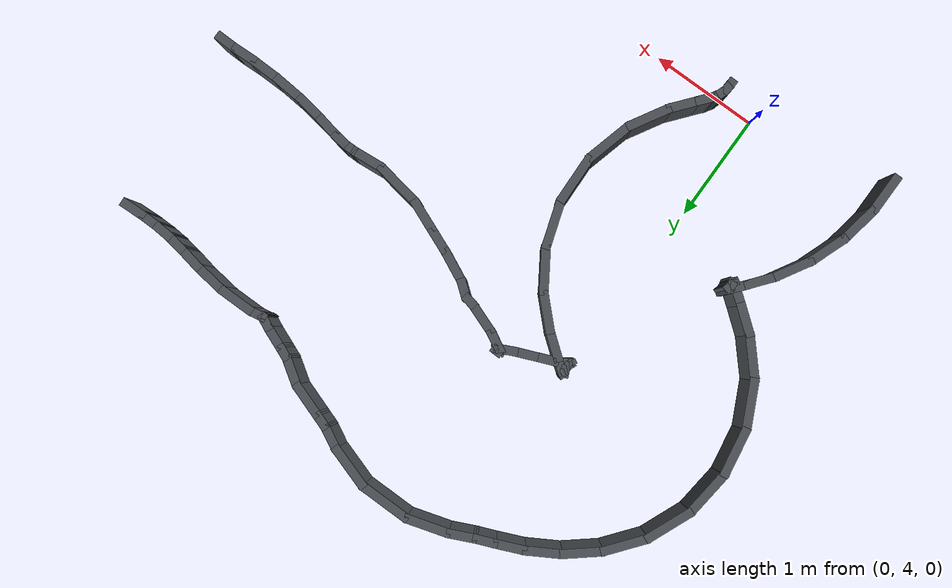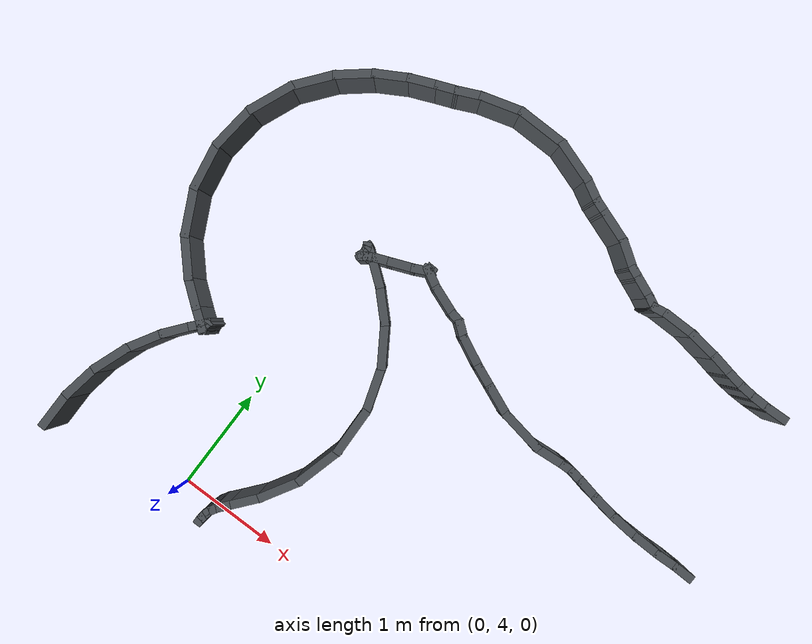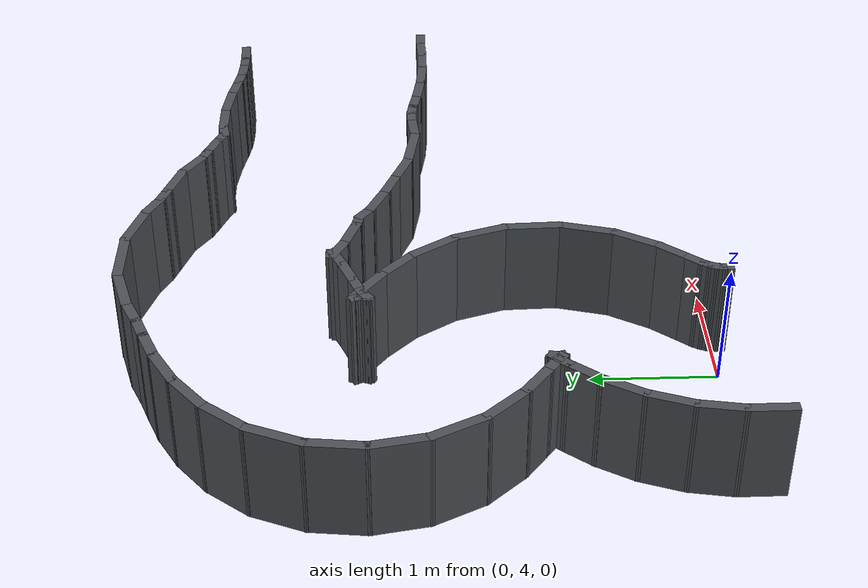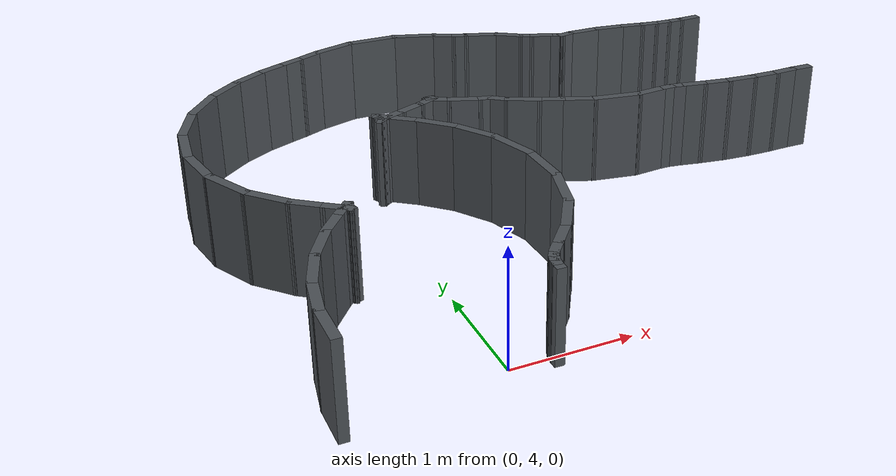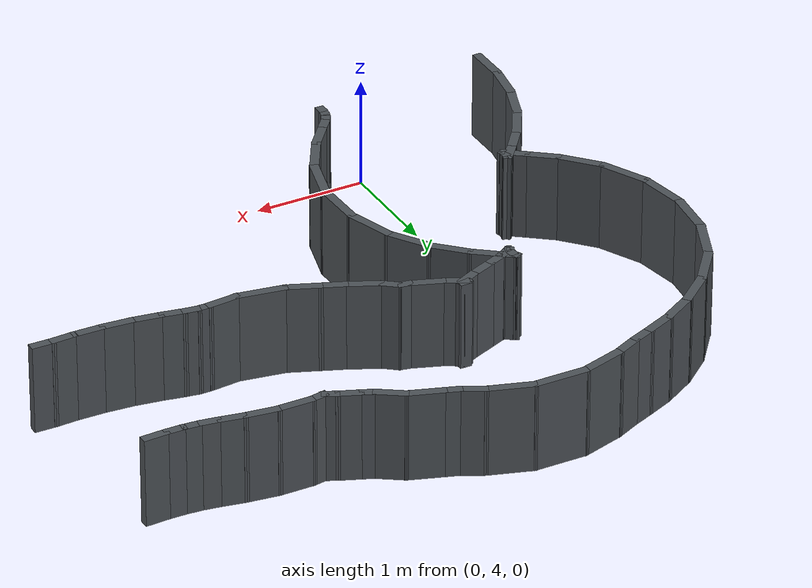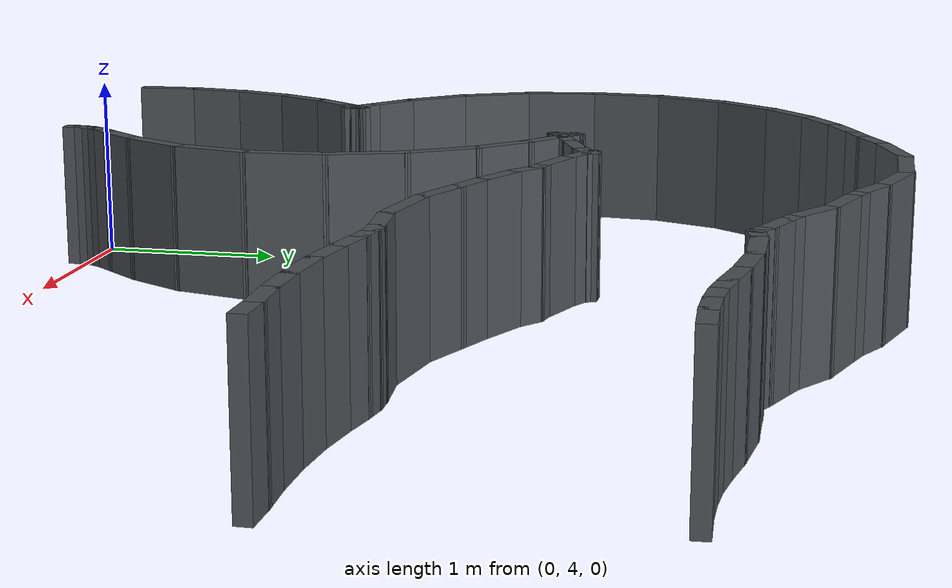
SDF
<sdf version="1.10">
 <world name="kookmin_xycar_track">
  <model name="slam_map">
   <static>true</static>
   <link name="route_wall_0023">
    <pose>4.066680 6.177895 0.400000 0 0 3.118690224</pose>
    <collision name="collision">
     <geometry><box><size>0.211960 0.080000 0.800000</size></box></geometry>
    </collision>
    <visual name="visual">
     <geometry><box><size>0.211960 0.080000 0.800000</size></box></geometry>
     <material>
      <ambient>0.3000 0.3200 0.3400 1.0000</ambient>
      <diffuse>0.3000 0.3200 0.3400 1.0000</diffuse>
     </material>
    </visual>
   </link>
   <link name="route_wall_0024">
    <pose>3.880706 6.176388 0.400000 0 0 -3.106851487</pose>
    <collision name="collision">
     <geometry><box><size>0.240152 0.080000 0.800000</size></box></geometry>
    </collision>
    <visual name="visual">
     <geometry><box><size>0.240152 0.080000 0.800000</size></box></geometry>
     <material>
      <ambient>0.3000 0.3200 0.3400 1.0000</ambient>
      <diffuse>0.3000 0.3200 0.3400 1.0000</diffuse>
     </material>
    </visual>
   </link>
   <link name="route_wall_0025">
    <pose>3.656183 6.175736 0.400000 0 0 3.118914098</pose>
    <collision name="collision">
     <geometry><box><size>0.289079 0.080000 0.800000</size></box></geometry>
    </collision>
    <visual name="visual">
     <geometry><box><size>0.289079 0.080000 0.800000</size></box></geometry>
     <material>
      <ambient>0.3000 0.3200 0.3400 1.0000</ambient>
      <diffuse>0.3000 0.3200 0.3400 1.0000</diffuse>
     </material>
    </visual>
   </link>
   <link name="route_wall_0026">
    <pose>3.403484 6.189761 0.400000 0 0 3.054436738</pose>
    <collision name="collision">
     <geometry><box><size>0.297360 0.080000 0.800000</size></box></geometry>
    </collision>
    <visual name="visual">
     <geometry><box><size>0.297360 0.080000 0.800000</size></box></geometry>
     <material>
      <ambient>0.3000 0.3200 0.3400 1.0000</ambient>
      <diffuse>0.3000 0.3200 0.3400 1.0000</diffuse>
     </material>
    </visual>
   </link>
   <link name="route_wall_0027">
    <pose>3.153701 6.220835 0.400000 0 0 2.979582078</pose>
    <collision name="collision">
     <geometry><box><size>0.286408 0.080000 0.800000</size></box></geometry>
    </collision>
    <visual name="visual">
     <geometry><box><size>0.286408 0.080000 0.800000</size></box></geometry>
     <material>
      <ambient>0.3000 0.3200 0.3400 1.0000</ambient>
      <diffuse>0.3000 0.3200 0.3400 1.0000</diffuse>
     </material>
    </visual>
   </link>
   <link name="route_wall_0028">
    <pose>2.938764 6.259848 0.400000 0 0 2.939355882</pose>
    <collision name="collision">
     <geometry><box><size>0.230577 0.080000 0.800000</size></box></geometry>
    </collision>
    <visual name="visual">
     <geometry><box><size>0.230577 0.080000 0.800000</size></box></geometry>
     <material>
      <ambient>0.3000 0.3200 0.3400 1.0000</ambient>
      <diffuse>0.3000 0.3200 0.3400 1.0000</diffuse>
     </material>
    </visual>
   </link>
   <link name="route_wall_0029">
    <pose>2.785933 6.288229 0.400000 0 0 2.987461907</pose>
    <collision name="collision">
     <geometry><box><size>0.160396 0.080000 0.800000</size></box></geometry>
    </collision>
    <visual name="visual">
     <geometry><box><size>0.160396 0.080000 0.800000</size></box></geometry>
     <material>
      <ambient>0.3000 0.3200 0.3400 1.0000</ambient>
      <diffuse>0.3000 0.3200 0.3400 1.0000</diffuse>
     </material>
    </visual>
   </link>
   <link name="route_wall_0030">
    <pose>2.677828 6.297540 0.400000 0 0 3.140164952</pose>
    <collision name="collision">
     <geometry><box><size>0.137243 0.080000 0.800000</size></box></geometry>
    </collision>
    <visual name="visual">
     <geometry><box><size>0.137243 0.080000 0.800000</size></box></geometry>
     <material>
      <ambient>0.3000 0.3200 0.3400 1.0000</ambient>
      <diffuse>0.3000 0.3200 0.3400 1.0000</diffuse>
     </material>
    </visual>
   </link>
   <link name="route_wall_0031">
    <pose>2.495059 6.286499 0.400000 0 0 -3.058956961</pose>
    <collision name="collision">
     <geometry><box><size>0.309212 0.080000 0.800000</size></box></geometry>
    </collision>
    <visual name="visual">
     <geometry><box><size>0.309212 0.080000 0.800000</size></box></geometry>
     <material>
      <ambient>0.3000 0.3200 0.3400 1.0000</ambient>
      <diffuse>0.3000 0.3200 0.3400 1.0000</diffuse>
     </material>
    </visual>
   </link>
   <link name="route_wall_0032">
    <pose>2.158049 6.310664 0.400000 0 0 2.969426668</pose>
    <collision name="collision">
     <geometry><box><size>0.451814 0.080000 0.800000</size></box></geometry>
    </collision>
    <visual name="visual">
     <geometry><box><size>0.451814 0.080000 0.800000</size></box></geometry>
     <material>
      <ambient>0.3000 0.3200 0.3400 1.0000</ambient>
      <diffuse>0.3000 0.3200 0.3400 1.0000</diffuse>
     </material>
    </visual>
   </link>
   <link name="route_wall_0033">
    <pose>1.822978 6.401107 0.400000 0 0 2.746278868</pose>
    <collision name="collision">
     <geometry><box><size>0.326515 0.080000 0.800000</size></box></geometry>
    </collision>
    <visual name="visual">
     <geometry><box><size>0.326515 0.080000 0.800000</size></box></geometry>
     <material>
      <ambient>0.3000 0.3200 0.3400 1.0000</ambient>
      <diffuse>0.3000 0.3200 0.3400 1.0000</diffuse>
     </material>
    </visual>
   </link>
   <link name="route_wall_0034">
    <pose>1.594399 6.496347 0.400000 0 0 2.747526660</pose>
    <collision name="collision">
     <geometry><box><size>0.248737 0.080000 0.800000</size></box></geometry>
    </collision>
    <visual name="visual">
     <geometry><box><size>0.248737 0.080000 0.800000</size></box></geometry>
     <material>
      <ambient>0.3000 0.3200 0.3400 1.0000</ambient>
      <diffuse>0.3000 0.3200 0.3400 1.0000</diffuse>
     </material>
    </visual>
   </link>
   <link name="route_wall_0035">
    <pose>1.366786 6.599541 0.400000 0 0 2.693298429</pose>
    <collision name="collision">
     <geometry><box><size>0.331268 0.080000 0.800000</size></box></geometry>
    </collision>
    <visual name="visual">
     <geometry><box><size>0.331268 0.080000 0.800000</size></box></geometry>
     <material>
      <ambient>0.3000 0.3200 0.3400 1.0000</ambient>
      <diffuse>0.3000 0.3200 0.3400 1.0000</diffuse>
     </material>
    </visual>
   </link>
   <link name="route_wall_0036">
    <pose>1.177283 6.708098 0.400000 0 0 2.479251623</pose>
    <collision name="collision">
     <geometry><box><size>0.187765 0.080000 0.800000</size></box></geometry>
    </collision>
    <visual name="visual">
     <geometry><box><size>0.187765 0.080000 0.800000</size></box></geometry>
     <material>
      <ambient>0.3000 0.3200 0.3400 1.0000</ambient>
      <diffuse>0.3000 0.3200 0.3400 1.0000</diffuse>
     </material>
    </visual>
   </link>
   <link name="route_wall_0037">
    <pose>1.073940 6.762874 0.400000 0 0 2.937290715</pose>
    <collision name="collision">
     <geometry><box><size>0.132080 0.080000 0.800000</size></box></geometry>
    </collision>
    <visual name="visual">
     <geometry><box><size>0.132080 0.080000 0.800000</size></box></geometry>
     <material>
      <ambient>0.3000 0.3200 0.3400 1.0000</ambient>
      <diffuse>0.3000 0.3200 0.3400 1.0000</diffuse>
     </material>
    </visual>
   </link>
   <link name="route_wall_0038">
    <pose>0.901160 6.820513 0.400000 0 0 2.779998943</pose>
    <collision name="collision">
     <geometry><box><size>0.313050 0.080000 0.800000</size></box></geometry>
    </collision>
    <visual name="visual">
     <geometry><box><size>0.313050 0.080000 0.800000</size></box></geometry>
     <material>
      <ambient>0.3000 0.3200 0.3400 1.0000</ambient>
      <diffuse>0.3000 0.3200 0.3400 1.0000</diffuse>
     </material>
    </visual>
   </link>
   <link name="route_wall_0039">
    <pose>0.687721 6.914750 0.400000 0 0 2.649731264</pose>
    <collision name="collision">
     <geometry><box><size>0.234548 0.080000 0.800000</size></box></geometry>
    </collision>
    <visual name="visual">
     <geometry><box><size>0.234548 0.080000 0.800000</size></box></geometry>
     <material>
      <ambient>0.3000 0.3200 0.3400 1.0000</ambient>
      <diffuse>0.3000 0.3200 0.3400 1.0000</diffuse>
     </material>
    </visual>
   </link>
   <link name="route_wall_0040">
    <pose>0.601748 6.965573 0.400000 0 0 1.617759873</pose>
    <collision name="collision">
     <geometry><box><size>0.049777 0.080000 0.800000</size></box></geometry>
    </collision>
    <visual name="visual">
     <geometry><box><size>0.049777 0.080000 0.800000</size></box></geometry>
     <material>
      <ambient>0.3000 0.3200 0.3400 1.0000</ambient>
      <diffuse>0.3000 0.3200 0.3400 1.0000</diffuse>
     </material>
    </visual>
   </link>
   <link name="route_wall_0041">
    <pose>0.634148 6.969611 0.400000 0 0 -0.025913968</pose>
    <collision name="collision">
     <geometry><box><size>0.105280 0.080000 0.800000</size></box></geometry>
    </collision>
    <visual name="visual">
     <geometry><box><size>0.105280 0.080000 0.800000</size></box></geometry>
     <material>
      <ambient>0.3000 0.3200 0.3400 1.0000</ambient>
      <diffuse>0.3000 0.3200 0.3400 1.0000</diffuse>
     </material>
    </visual>
   </link>
   <link name="route_wall_0042">
    <pose>0.659911 6.962137 0.400000 0 0 -2.373852807</pose>
    <collision name="collision">
     <geometry><box><size>0.059085 0.080000 0.800000</size></box></geometry>
    </collision>
    <visual name="visual">
     <geometry><box><size>0.059085 0.080000 0.800000</size></box></geometry>
     <material>
      <ambient>0.3000 0.3200 0.3400 1.0000</ambient>
      <diffuse>0.3000 0.3200 0.3400 1.0000</diffuse>
     </material>
    </visual>
   </link>
   <link name="route_wall_0043">
    <pose>0.576813 6.919122 0.400000 0 0 -2.696242966</pose>
    <collision name="collision">
     <geometry><box><size>0.208943 0.080000 0.800000</size></box></geometry>
    </collision>
    <visual name="visual">
     <geometry><box><size>0.208943 0.080000 0.800000</size></box></geometry>
     <material>
      <ambient>0.3000 0.3200 0.3400 1.0000</ambient>
      <diffuse>0.3000 0.3200 0.3400 1.0000</diffuse>
     </material>
    </visual>
   </link>
   <link name="route_wall_0044">
    <pose>0.399805 6.842053 0.400000 0 0 -2.757925123</pose>
    <collision name="collision">
     <geometry><box><size>0.257355 0.080000 0.800000</size></box></geometry>
    </collision>
    <visual name="visual">
     <geometry><box><size>0.257355 0.080000 0.800000</size></box></geometry>
     <material>
      <ambient>0.3000 0.3200 0.3400 1.0000</ambient>
      <diffuse>0.3000 0.3200 0.3400 1.0000</diffuse>
     </material>
    </visual>
   </link>
   <link name="route_wall_0045">
    <pose>0.232785 6.774767 0.400000 0 0 -2.759674588</pose>
    <collision name="collision">
     <geometry><box><size>0.182774 0.080000 0.800000</size></box></geometry>
    </collision>
    <visual name="visual">
     <geometry><box><size>0.182774 0.080000 0.800000</size></box></geometry>
     <material>
      <ambient>0.3000 0.3200 0.3400 1.0000</ambient>
      <diffuse>0.3000 0.3200 0.3400 1.0000</diffuse>
     </material>
    </visual>
   </link>
   <link name="route_wall_0046">
    <pose>0.131454 6.728596 0.400000 0 0 -2.632941077</pose>
    <collision name="collision">
     <geometry><box><size>0.120346 0.080000 0.800000</size></box></geometry>
    </collision>
    <visual name="visual">
     <geometry><box><size>0.120346 0.080000 0.800000</size></box></geometry>
     <material>
      <ambient>0.3000 0.3200 0.3400 1.0000</ambient>
      <diffuse>0.3000 0.3200 0.3400 1.0000</diffuse>
     </material>
    </visual>
   </link>
   <link name="route_wall_0047">
    <pose>0.076665 6.693876 0.400000 0 0 -2.485856049</pose>
    <collision name="collision">
     <geometry><box><size>0.089714 0.080000 0.800000</size></box></geometry>
    </collision>
    <visual name="visual">
     <geometry><box><size>0.089714 0.080000 0.800000</size></box></geometry>
     <material>
      <ambient>0.3000 0.3200 0.3400 1.0000</ambient>
      <diffuse>0.3000 0.3200 0.3400 1.0000</diffuse>
     </material>
    </visual>
   </link>
   <link name="route_wall_0048">
    <pose>0.055192 6.679678 0.400000 0 0 2.645624647</pose>
    <collision name="collision">
     <geometry><box><size>0.044028 0.080000 0.800000</size></box></geometry>
    </collision>
    <visual name="visual">
     <geometry><box><size>0.044028 0.080000 0.800000</size></box></geometry>
     <material>
      <ambient>0.3000 0.3200 0.3400 1.0000</ambient>
      <diffuse>0.3000 0.3200 0.3400 1.0000</diffuse>
     </material>
    </visual>
   </link>
   <link name="route_wall_0049">
    <pose>0.059844 6.696252 0.400000 0 0 1.180505814</pose>
    <collision name="collision">
     <geometry><box><size>0.073771 0.080000 0.800000</size></box></geometry>
    </collision>
    <visual name="visual">
     <geometry><box><size>0.073771 0.080000 0.800000</size></box></geometry>
     <material>
      <ambient>0.3000 0.3200 0.3400 1.0000</ambient>
      <diffuse>0.3000 0.3200 0.3400 1.0000</diffuse>
     </material>
    </visual>
   </link>
   <link name="route_wall_0050">
    <pose>0.068265 6.727100 0.400000 0 0 1.440461473</pose>
    <collision name="collision">
     <geometry><box><size>0.070726 0.080000 0.800000</size></box></geometry>
    </collision>
    <visual name="visual">
     <geometry><box><size>0.070726 0.080000 0.800000</size></box></geometry>
     <material>
      <ambient>0.3000 0.3200 0.3400 1.0000</ambient>
      <diffuse>0.3000 0.3200 0.3400 1.0000</diffuse>
     </material>
    </visual>
   </link>
   <link name="route_wall_0051">
    <pose>0.067244 6.757899 0.400000 0 0 1.762306409</pose>
    <collision name="collision">
     <geometry><box><size>0.071711 0.080000 0.800000</size></box></geometry>
    </collision>
    <visual name="visual">
     <geometry><box><size>0.071711 0.080000 0.800000</size></box></geometry>
     <material>
      <ambient>0.3000 0.3200 0.3400 1.0000</ambient>
      <diffuse>0.3000 0.3200 0.3400 1.0000</diffuse>
     </material>
    </visual>
   </link>
   <link name="route_wall_0052">
    <pose>0.056206 6.789823 0.400000 0 0 2.026629559</pose>
    <collision name="collision">
     <geometry><box><size>0.076438 0.080000 0.800000</size></box></geometry>
    </collision>
    <visual name="visual">
     <geometry><box><size>0.076438 0.080000 0.800000</size></box></geometry>
     <material>
      <ambient>0.3000 0.3200 0.3400 1.0000</ambient>
      <diffuse>0.3000 0.3200 0.3400 1.0000</diffuse>
     </material>
    </visual>
   </link>
   <link name="route_wall_0053">
    <pose>0.054252 6.803685 0.400000 0 0 -0.390416202</pose>
    <collision name="collision">
     <geometry><box><size>0.053120 0.080000 0.800000</size></box></geometry>
    </collision>
    <visual name="visual">
     <geometry><box><size>0.053120 0.080000 0.800000</size></box></geometry>
     <material>
      <ambient>0.3000 0.3200 0.3400 1.0000</ambient>
      <diffuse>0.3000 0.3200 0.3400 1.0000</diffuse>
     </material>
    </visual>
   </link>
   <link name="route_wall_0054">
    <pose>0.112756 6.762896 0.400000 0 0 -0.630745345</pose>
    <collision name="collision">
     <geometry><box><size>0.169862 0.080000 0.800000</size></box></geometry>
    </collision>
    <visual name="visual">
     <geometry><box><size>0.169862 0.080000 0.800000</size></box></geometry>
     <material>
      <ambient>0.3000 0.3200 0.3400 1.0000</ambient>
      <diffuse>0.3000 0.3200 0.3400 1.0000</diffuse>
     </material>
    </visual>
   </link>
   <link name="route_wall_0055">
    <pose>0.263308 6.648690 0.400000 0 0 -0.658507556</pose>
    <collision name="collision">
     <geometry><box><size>0.288107 0.080000 0.800000</size></box></geometry>
    </collision>
    <visual name="visual">
     <geometry><box><size>0.288107 0.080000 0.800000</size></box></geometry>
     <material>
      <ambient>0.3000 0.3200 0.3400 1.0000</ambient>
      <diffuse>0.3000 0.3200 0.3400 1.0000</diffuse>
     </material>
    </visual>
   </link>
   <link name="route_wall_0056">
    <pose>0.481211 6.453624 0.400000 0 0 -0.782736762</pose>
    <collision name="collision">
     <geometry><box><size>0.377915 0.080000 0.800000</size></box></geometry>
    </collision>
    <visual name="visual">
     <geometry><box><size>0.377915 0.080000 0.800000</size></box></geometry>
     <material>
      <ambient>0.3000 0.3200 0.3400 1.0000</ambient>
      <diffuse>0.3000 0.3200 0.3400 1.0000</diffuse>
     </material>
    </visual>
   </link>
   <link name="route_wall_0057">
    <pose>0.708033 6.168649 0.400000 0 0 -0.997615465</pose>
    <collision name="collision">
     <geometry><box><size>0.434732 0.080000 0.800000</size></box></geometry>
    </collision>
    <visual name="visual">
     <geometry><box><size>0.434732 0.080000 0.800000</size></box></geometry>
     <material>
      <ambient>0.3000 0.3200 0.3400 1.0000</ambient>
      <diffuse>0.3000 0.3200 0.3400 1.0000</diffuse>
     </material>
    </visual>
   </link>
   <link name="route_wall_0058">
    <pose>0.880274 5.802291 0.400000 0 0 -1.256408148</pose>
    <collision name="collision">
     <geometry><box><size>0.461740 0.080000 0.800000</size></box></geometry>
    </collision>
    <visual name="visual">
     <geometry><box><size>0.461740 0.080000 0.800000</size></box></geometry>
     <material>
      <ambient>0.3000 0.3200 0.3400 1.0000</ambient>
      <diffuse>0.3000 0.3200 0.3400 1.0000</diffuse>
     </material>
    </visual>
   </link>
   <link name="route_wall_0059">
    <pose>0.951910 5.383896 0.400000 0 0 -1.541303337</pose>
    <collision name="collision">
     <geometry><box><size>0.475912 0.080000 0.800000</size></box></geometry>
    </collision>
    <visual name="visual">
     <geometry><box><size>0.475912 0.080000 0.800000</size></box></geometry>
     <material>
      <ambient>0.3000 0.3200 0.3400 1.0000</ambient>
      <diffuse>0.3000 0.3200 0.3400 1.0000</diffuse>
     </material>
    </visual>
   </link>
   <link name="route_wall_0060">
    <pose>0.902152 4.957134 0.400000 0 0 -1.833533494</pose>
    <collision name="collision">
     <geometry><box><size>0.472651 0.080000 0.800000</size></box></geometry>
    </collision>
    <visual name="visual">
     <geometry><box><size>0.472651 0.080000 0.800000</size></box></geometry>
     <material>
      <ambient>0.3000 0.3200 0.3400 1.0000</ambient>
      <diffuse>0.3000 0.3200 0.3400 1.0000</diffuse>
     </material>
    </visual>
   </link>
   <link name="route_wall_0061">
    <pose>0.751174 4.586245 0.400000 0 0 -2.100253503</pose>
    <collision name="collision">
     <geometry><box><size>0.415368 0.080000 0.800000</size></box></geometry>
    </collision>
    <visual name="visual">
     <geometry><box><size>0.415368 0.080000 0.800000</size></box></geometry>
     <material>
      <ambient>0.3000 0.3200 0.3400 1.0000</ambient>
      <diffuse>0.3000 0.3200 0.3400 1.0000</diffuse>
     </material>
    </visual>
   </link>
   <link name="route_wall_0062">
    <pose>0.575559 4.326039 0.400000 0 0 -2.259334244</pose>
    <collision name="collision">
     <geometry><box><size>0.294397 0.080000 0.800000</size></box></geometry>
    </collision>
    <visual name="visual">
     <geometry><box><size>0.294397 0.080000 0.800000</size></box></geometry>
     <material>
      <ambient>0.3000 0.3200 0.3400 1.0000</ambient>
      <diffuse>0.3000 0.3200 0.3400 1.0000</diffuse>
     </material>
    </visual>
   </link>
   <link name="route_wall_0063">
    <pose>0.452438 4.177087 0.400000 0 0 -2.265780603</pose>
    <collision name="collision">
     <geometry><box><size>0.172104 0.080000 0.800000</size></box></geometry>
    </collision>
    <visual name="visual">
     <geometry><box><size>0.172104 0.080000 0.800000</size></box></geometry>
     <material>
      <ambient>0.3000 0.3200 0.3400 1.0000</ambient>
      <diffuse>0.3000 0.3200 0.3400 1.0000</diffuse>
     </material>
    </visual>
   </link>
   <link name="route_wall_0064">
    <pose>0.392894 4.098183 0.400000 0 0 -2.120125550</pose>
    <collision name="collision">
     <geometry><box><size>0.106064 0.080000 0.800000</size></box></geometry>
    </collision>
    <visual name="visual">
     <geometry><box><size>0.106064 0.080000 0.800000</size></box></geometry>
     <material>
      <ambient>0.3000 0.3200 0.3400 1.0000</ambient>
      <diffuse>0.3000 0.3200 0.3400 1.0000</diffuse>
     </material>
    </visual>
   </link>
   <link name="route_wall_0065">
    <pose>0.366701 4.045649 0.400000 0 0 -1.922732345</pose>
    <collision name="collision">
     <geometry><box><size>0.091906 0.080000 0.800000</size></box></geometry>
    </collision>
    <visual name="visual">
     <geometry><box><size>0.091906 0.080000 0.800000</size></box></geometry>
     <material>
      <ambient>0.3000 0.3200 0.3400 1.0000</ambient>
      <diffuse>0.3000 0.3200 0.3400 1.0000</diffuse>
     </material>
    </visual>
   </link>
   <link name="route_wall_0066">
    <pose>0.353142 3.993082 0.400000 0 0 -1.732886128</pose>
    <collision name="collision">
     <geometry><box><size>0.097160 0.080000 0.800000</size></box></geometry>
    </collision>
    <visual name="visual">
     <geometry><box><size>0.097160 0.080000 0.800000</size></box></geometry>
     <material>
      <ambient>0.3000 0.3200 0.3400 1.0000</ambient>
      <diffuse>0.3000 0.3200 0.3400 1.0000</diffuse>
     </material>
    </visual>
   </link>
   <link name="route_wall_0067">
    <pose>0.348047 3.938284 0.400000 0 0 -1.588963887</pose>
    <collision name="collision">
     <geometry><box><size>0.093194 0.080000 0.800000</size></box></geometry>
    </collision>
    <visual name="visual">
     <geometry><box><size>0.093194 0.080000 0.800000</size></box></geometry>
     <material>
      <ambient>0.3000 0.3200 0.3400 1.0000</ambient>
      <diffuse>0.3000 0.3200 0.3400 1.0000</diffuse>
     </material>
    </visual>
   </link>
   <link name="route_wall_0238">
    <pose>3.870030 7.808353 0.400000 0 0 -3.106711689</pose>
    <collision name="collision">
     <geometry><box><size>0.239165 0.080000 0.800000</size></box></geometry>
    </collision>
    <visual name="visual">
     <geometry><box><size>0.239165 0.080000 0.800000</size></box></geometry>
     <material>
      <ambient>0.3000 0.3200 0.3400 1.0000</ambient>
      <diffuse>0.3000 0.3200 0.3400 1.0000</diffuse>
     </material>
    </visual>
   </link>
   <link name="route_wall_0239">
    <pose>3.695432 7.806514 0.400000 0 0 3.119825711</pose>
    <collision name="collision">
     <geometry><box><size>0.190188 0.080000 0.800000</size></box></geometry>
    </collision>
    <visual name="visual">
     <geometry><box><size>0.190188 0.080000 0.800000</size></box></geometry>
     <material>
      <ambient>0.3000 0.3200 0.3400 1.0000</ambient>
      <diffuse>0.3000 0.3200 0.3400 1.0000</diffuse>
     </material>
    </visual>
   </link>
   <link name="route_wall_0240">
    <pose>3.549693 7.814172 0.400000 0 0 3.056562306</pose>
    <collision name="collision">
     <geometry><box><size>0.181839 0.080000 0.800000</size></box></geometry>
    </collision>
    <visual name="visual">
     <geometry><box><size>0.181839 0.080000 0.800000</size></box></geometry>
     <material>
      <ambient>0.3000 0.3200 0.3400 1.0000</ambient>
      <diffuse>0.3000 0.3200 0.3400 1.0000</diffuse>
     </material>
    </visual>
   </link>
   <link name="route_wall_0241">
    <pose>3.403671 7.832899 0.400000 0 0 2.974578315</pose>
    <collision name="collision">
     <geometry><box><size>0.192844 0.080000 0.800000</size></box></geometry>
    </collision>
    <visual name="visual">
     <geometry><box><size>0.192844 0.080000 0.800000</size></box></geometry>
     <material>
      <ambient>0.3000 0.3200 0.3400 1.0000</ambient>
      <diffuse>0.3000 0.3200 0.3400 1.0000</diffuse>
     </material>
    </visual>
   </link>
   <link name="route_wall_0242">
    <pose>3.226035 7.866340 0.400000 0 0 2.941554034</pose>
    <collision name="collision">
     <geometry><box><size>0.248716 0.080000 0.800000</size></box></geometry>
    </collision>
    <visual name="visual">
     <geometry><box><size>0.248716 0.080000 0.800000</size></box></geometry>
     <material>
      <ambient>0.3000 0.3200 0.3400 1.0000</ambient>
      <diffuse>0.3000 0.3200 0.3400 1.0000</diffuse>
     </material>
    </visual>
   </link>
   <link name="route_wall_0243">
    <pose>2.985600 7.906028 0.400000 0 0 3.005270886</pose>
    <collision name="collision">
     <geometry><box><size>0.318903 0.080000 0.800000</size></box></geometry>
    </collision>
    <visual name="visual">
     <geometry><box><size>0.318903 0.080000 0.800000</size></box></geometry>
     <material>
      <ambient>0.3000 0.3200 0.3400 1.0000</ambient>
      <diffuse>0.3000 0.3200 0.3400 1.0000</diffuse>
     </material>
    </visual>
   </link>
   <link name="route_wall_0244">
    <pose>2.696694 7.926232 0.400000 0 0 3.133284768</pose>
    <collision name="collision">
     <geometry><box><size>0.341508 0.080000 0.800000</size></box></geometry>
    </collision>
    <visual name="visual">
     <geometry><box><size>0.341508 0.080000 0.800000</size></box></geometry>
     <material>
      <ambient>0.3000 0.3200 0.3400 1.0000</ambient>
      <diffuse>0.3000 0.3200 0.3400 1.0000</diffuse>
     </material>
    </visual>
   </link>
   <link name="route_wall_0245">
    <pose>2.481614 7.916950 0.400000 0 0 -2.979271766</pose>
    <collision name="collision">
     <geometry><box><size>0.170375 0.080000 0.800000</size></box></geometry>
    </collision>
    <visual name="visual">
     <geometry><box><size>0.170375 0.080000 0.800000</size></box></geometry>
     <material>
      <ambient>0.3000 0.3200 0.3400 1.0000</ambient>
      <diffuse>0.3000 0.3200 0.3400 1.0000</diffuse>
     </material>
    </visual>
   </link>
   <link name="route_wall_0246">
    <pose>2.425274 7.906380 0.400000 0 0 -0.004355527</pose>
    <collision name="collision">
     <geometry><box><size>0.055980 0.080000 0.800000</size></box></geometry>
    </collision>
    <visual name="visual">
     <geometry><box><size>0.055980 0.080000 0.800000</size></box></geometry>
     <material>
      <ambient>0.3000 0.3200 0.3400 1.0000</ambient>
      <diffuse>0.3000 0.3200 0.3400 1.0000</diffuse>
     </material>
    </visual>
   </link>
   <link name="route_wall_0247">
    <pose>2.382834 7.931598 0.400000 0 0 2.677336784</pose>
    <collision name="collision">
     <geometry><box><size>0.152799 0.080000 0.800000</size></box></geometry>
    </collision>
    <visual name="visual">
     <geometry><box><size>0.152799 0.080000 0.800000</size></box></geometry>
     <material>
      <ambient>0.3000 0.3200 0.3400 1.0000</ambient>
      <diffuse>0.3000 0.3200 0.3400 1.0000</diffuse>
     </material>
    </visual>
   </link>
   <link name="route_wall_0248">
    <pose>2.244492 7.993251 0.400000 0 0 2.749042956</pose>
    <collision name="collision">
     <geometry><box><size>0.230299 0.080000 0.800000</size></box></geometry>
    </collision>
    <visual name="visual">
     <geometry><box><size>0.230299 0.080000 0.800000</size></box></geometry>
     <material>
      <ambient>0.3000 0.3200 0.3400 1.0000</ambient>
      <diffuse>0.3000 0.3200 0.3400 1.0000</diffuse>
     </material>
    </visual>
   </link>
   <link name="route_wall_0249">
    <pose>2.107365 8.050915 0.400000 0 0 2.733720942</pose>
    <collision name="collision">
     <geometry><box><size>0.147224 0.080000 0.800000</size></box></geometry>
    </collision>
    <visual name="visual">
     <geometry><box><size>0.147224 0.080000 0.800000</size></box></geometry>
     <material>
      <ambient>0.3000 0.3200 0.3400 1.0000</ambient>
      <diffuse>0.3000 0.3200 0.3400 1.0000</diffuse>
     </material>
    </visual>
   </link>
   <link name="route_wall_0250">
    <pose>1.953929 8.142502 0.400000 0 0 2.548035988</pose>
    <collision name="collision">
     <geometry><box><size>0.291455 0.080000 0.800000</size></box></geometry>
    </collision>
    <visual name="visual">
     <geometry><box><size>0.291455 0.080000 0.800000</size></box></geometry>
     <material>
      <ambient>0.3000 0.3200 0.3400 1.0000</ambient>
      <diffuse>0.3000 0.3200 0.3400 1.0000</diffuse>
     </material>
    </visual>
   </link>
   <link name="route_wall_0251">
    <pose>1.705446 8.263889 0.400000 0 0 2.801367282</pose>
    <collision name="collision">
     <geometry><box><size>0.346064 0.080000 0.800000</size></box></geometry>
    </collision>
    <visual name="visual">
     <geometry><box><size>0.346064 0.080000 0.800000</size></box></geometry>
     <material>
      <ambient>0.3000 0.3200 0.3400 1.0000</ambient>
      <diffuse>0.3000 0.3200 0.3400 1.0000</diffuse>
     </material>
    </visual>
   </link>
   <link name="route_wall_0252">
    <pose>1.502235 8.335987 0.400000 0 0 2.798904666</pose>
    <collision name="collision">
     <geometry><box><size>0.165179 0.080000 0.800000</size></box></geometry>
    </collision>
    <visual name="visual">
     <geometry><box><size>0.165179 0.080000 0.800000</size></box></geometry>
     <material>
      <ambient>0.3000 0.3200 0.3400 1.0000</ambient>
      <diffuse>0.3000 0.3200 0.3400 1.0000</diffuse>
     </material>
    </visual>
   </link>
   <link name="route_wall_0253">
    <pose>1.352864 8.405046 0.400000 0 0 2.653334137</pose>
    <collision name="collision">
     <geometry><box><size>0.244768 0.080000 0.800000</size></box></geometry>
    </collision>
    <visual name="visual">
     <geometry><box><size>0.244768 0.080000 0.800000</size></box></geometry>
     <material>
      <ambient>0.3000 0.3200 0.3400 1.0000</ambient>
      <diffuse>0.3000 0.3200 0.3400 1.0000</diffuse>
     </material>
    </visual>
   </link>
   <link name="route_wall_0254">
    <pose>1.075410 8.515061 0.400000 0 0 2.821561829</pose>
    <collision name="collision">
     <geometry><box><size>0.434076 0.080000 0.800000</size></box></geometry>
    </collision>
    <visual name="visual">
     <geometry><box><size>0.434076 0.080000 0.800000</size></box></geometry>
     <material>
      <ambient>0.3000 0.3200 0.3400 1.0000</ambient>
      <diffuse>0.3000 0.3200 0.3400 1.0000</diffuse>
     </material>
    </visual>
   </link>
   <link name="route_wall_0255">
    <pose>0.656990 8.579947 0.400000 0 0 3.129063520</pose>
    <collision name="collision">
     <geometry><box><size>0.502810 0.080000 0.800000</size></box></geometry>
    </collision>
    <visual name="visual">
     <geometry><box><size>0.502810 0.080000 0.800000</size></box></geometry>
     <material>
      <ambient>0.3000 0.3200 0.3400 1.0000</ambient>
      <diffuse>0.3000 0.3200 0.3400 1.0000</diffuse>
     </material>
    </visual>
   </link>
   <link name="route_wall_0256">
    <pose>0.242748 8.529375 0.400000 0 0 -2.857097486</pose>
    <collision name="collision">
     <geometry><box><size>0.421026 0.080000 0.800000</size></box></geometry>
    </collision>
    <visual name="visual">
     <geometry><box><size>0.421026 0.080000 0.800000</size></box></geometry>
     <material>
      <ambient>0.3000 0.3200 0.3400 1.0000</ambient>
      <diffuse>0.3000 0.3200 0.3400 1.0000</diffuse>
     </material>
    </visual>
   </link>
   <link name="route_wall_0257">
    <pose>-0.044759 8.427806 0.400000 0 0 -2.710792966</pose>
    <collision name="collision">
     <geometry><box><size>0.270351 0.080000 0.800000</size></box></geometry>
    </collision>
    <visual name="visual">
     <geometry><box><size>0.270351 0.080000 0.800000</size></box></geometry>
     <material>
      <ambient>0.3000 0.3200 0.3400 1.0000</ambient>
      <diffuse>0.3000 0.3200 0.3400 1.0000</diffuse>
     </material>
    </visual>
   </link>
   <link name="route_wall_0258">
    <pose>-0.233874 8.345902 0.400000 0 0 -2.760868159</pose>
    <collision name="collision">
     <geometry><box><size>0.221954 0.080000 0.800000</size></box></geometry>
    </collision>
    <visual name="visual">
     <geometry><box><size>0.221954 0.080000 0.800000</size></box></geometry>
     <material>
      <ambient>0.3000 0.3200 0.3400 1.0000</ambient>
      <diffuse>0.3000 0.3200 0.3400 1.0000</diffuse>
     </material>
    </visual>
   </link>
   <link name="route_wall_0259">
    <pose>-0.436450 8.262152 0.400000 0 0 -2.741544112</pose>
    <collision name="collision">
     <geometry><box><size>0.296478 0.080000 0.800000</size></box></geometry>
    </collision>
    <visual name="visual">
     <geometry><box><size>0.296478 0.080000 0.800000</size></box></geometry>
     <material>
      <ambient>0.3000 0.3200 0.3400 1.0000</ambient>
      <diffuse>0.3000 0.3200 0.3400 1.0000</diffuse>
     </material>
    </visual>
   </link>
   <link name="route_wall_0260">
    <pose>-0.692367 8.132362 0.400000 0 0 -2.616449532</pose>
    <collision name="collision">
     <geometry><box><size>0.358529 0.080000 0.800000</size></box></geometry>
    </collision>
    <visual name="visual">
     <geometry><box><size>0.358529 0.080000 0.800000</size></box></geometry>
     <material>
      <ambient>0.3000 0.3200 0.3400 1.0000</ambient>
      <diffuse>0.3000 0.3200 0.3400 1.0000</diffuse>
     </material>
    </visual>
   </link>
   <link name="route_wall_0261">
    <pose>-0.964814 7.941404 0.400000 0 0 -2.451647246</pose>
    <collision name="collision">
     <geometry><box><size>0.389141 0.080000 0.800000</size></box></geometry>
    </collision>
    <visual name="visual">
     <geometry><box><size>0.389141 0.080000 0.800000</size></box></geometry>
     <material>
      <ambient>0.3000 0.3200 0.3400 1.0000</ambient>
      <diffuse>0.3000 0.3200 0.3400 1.0000</diffuse>
     </material>
    </visual>
   </link>
   <link name="route_wall_0262">
    <pose>-1.223122 7.674643 0.400000 0 0 -2.242184932</pose>
    <collision name="collision">
     <geometry><box><size>0.437589 0.080000 0.800000</size></box></geometry>
    </collision>
    <visual name="visual">
     <geometry><box><size>0.437589 0.080000 0.800000</size></box></geometry>
     <material>
      <ambient>0.3000 0.3200 0.3400 1.0000</ambient>
      <diffuse>0.3000 0.3200 0.3400 1.0000</diffuse>
     </material>
    </visual>
   </link>
   <link name="route_wall_0263">
    <pose>-1.430209 7.319967 0.400000 0 0 -1.967701362</pose>
    <collision name="collision">
     <geometry><box><size>0.471608 0.080000 0.800000</size></box></geometry>
    </collision>
    <visual name="visual">
     <geometry><box><size>0.471608 0.080000 0.800000</size></box></geometry>
     <material>
      <ambient>0.3000 0.3200 0.3400 1.0000</ambient>
      <diffuse>0.3000 0.3200 0.3400 1.0000</diffuse>
     </material>
    </visual>
   </link>
   <link name="route_wall_0264">
    <pose>-1.537339 6.907887 0.400000 0 0 -1.681616573</pose>
    <collision name="collision">
     <geometry><box><size>0.468733 0.080000 0.800000</size></box></geometry>
    </collision>
    <visual name="visual">
     <geometry><box><size>0.468733 0.080000 0.800000</size></box></geometry>
     <material>
      <ambient>0.3000 0.3200 0.3400 1.0000</ambient>
      <diffuse>0.3000 0.3200 0.3400 1.0000</diffuse>
     </material>
    </visual>
   </link>
   <link name="route_wall_0265">
    <pose>-1.524848 6.483151 0.400000 0 0 -1.401431383</pose>
    <collision name="collision">
     <geometry><box><size>0.469516 0.080000 0.800000</size></box></geometry>
    </collision>
    <visual name="visual">
     <geometry><box><size>0.469516 0.080000 0.800000</size></box></geometry>
     <material>
      <ambient>0.3000 0.3200 0.3400 1.0000</ambient>
      <diffuse>0.3000 0.3200 0.3400 1.0000</diffuse>
     </material>
    </visual>
   </link>
   <link name="route_wall_0266">
    <pose>-1.392713 6.076628 0.400000 0 0 -1.113255360</pose>
    <collision name="collision">
     <geometry><box><size>0.474351 0.080000 0.800000</size></box></geometry>
    </collision>
    <visual name="visual">
     <geometry><box><size>0.474351 0.080000 0.800000</size></box></geometry>
     <material>
      <ambient>0.3000 0.3200 0.3400 1.0000</ambient>
      <diffuse>0.3000 0.3200 0.3400 1.0000</diffuse>
     </material>
    </visual>
   </link>
   <link name="route_wall_0267">
    <pose>-1.167694 5.738211 0.400000 0 0 -0.838512238</pose>
    <collision name="collision">
     <geometry><box><size>0.426149 0.080000 0.800000</size></box></geometry>
    </collision>
    <visual name="visual">
     <geometry><box><size>0.426149 0.080000 0.800000</size></box></geometry>
     <material>
      <ambient>0.3000 0.3200 0.3400 1.0000</ambient>
      <diffuse>0.3000 0.3200 0.3400 1.0000</diffuse>
     </material>
    </visual>
   </link>
   <link name="route_wall_0268">
    <pose>-0.932538 5.511536 0.400000 0 0 -0.664527162</pose>
    <collision name="collision">
     <geometry><box><size>0.309489 0.080000 0.800000</size></box></geometry>
    </collision>
    <visual name="visual">
     <geometry><box><size>0.309489 0.080000 0.800000</size></box></geometry>
     <material>
      <ambient>0.3000 0.3200 0.3400 1.0000</ambient>
      <diffuse>0.3000 0.3200 0.3400 1.0000</diffuse>
     </material>
    </visual>
   </link>
   <link name="route_wall_0269">
    <pose>-0.765956 5.383111 0.400000 0 0 -0.642944556</pose>
    <collision name="collision">
     <geometry><box><size>0.191210 0.080000 0.800000</size></box></geometry>
    </collision>
    <visual name="visual">
     <geometry><box><size>0.191210 0.080000 0.800000</size></box></geometry>
     <material>
      <ambient>0.3000 0.3200 0.3400 1.0000</ambient>
      <diffuse>0.3000 0.3200 0.3400 1.0000</diffuse>
     </material>
    </visual>
   </link>
   <link name="route_wall_0270">
    <pose>-0.682470 5.317817 0.400000 0 0 -0.715375906</pose>
    <collision name="collision">
     <geometry><box><size>0.100878 0.080000 0.800000</size></box></geometry>
    </collision>
    <visual name="visual">
     <geometry><box><size>0.100878 0.080000 0.800000</size></box></geometry>
     <material>
      <ambient>0.3000 0.3200 0.3400 1.0000</ambient>
      <diffuse>0.3000 0.3200 0.3400 1.0000</diffuse>
     </material>
    </visual>
   </link>
   <link name="route_wall_0271">
    <pose>-0.657655 5.296812 0.400000 0 0 -0.515096771</pose>
    <collision name="collision">
     <geometry><box><size>0.044224 0.080000 0.800000</size></box></geometry>
    </collision>
    <visual name="visual">
     <geometry><box><size>0.044224 0.080000 0.800000</size></box></geometry>
     <material>
      <ambient>0.3000 0.3200 0.3400 1.0000</ambient>
      <diffuse>0.3000 0.3200 0.3400 1.0000</diffuse>
     </material>
    </visual>
   </link>
   <link name="route_wall_0272">
    <pose>-0.658800 5.307238 0.400000 0 0 1.825315877</pose>
    <collision name="collision">
     <geometry><box><size>0.063697 0.080000 0.800000</size></box></geometry>
    </collision>
    <visual name="visual">
     <geometry><box><size>0.063697 0.080000 0.800000</size></box></geometry>
     <material>
      <ambient>0.3000 0.3200 0.3400 1.0000</ambient>
      <diffuse>0.3000 0.3200 0.3400 1.0000</diffuse>
     </material>
    </visual>
   </link>
   <link name="route_wall_0273">
    <pose>-0.662129 5.337760 0.400000 0 0 1.588888675</pose>
    <collision name="collision">
     <geometry><box><size>0.078117 0.080000 0.800000</size></box></geometry>
    </collision>
    <visual name="visual">
     <geometry><box><size>0.078117 0.080000 0.800000</size></box></geometry>
     <material>
      <ambient>0.3000 0.3200 0.3400 1.0000</ambient>
      <diffuse>0.3000 0.3200 0.3400 1.0000</diffuse>
     </material>
    </visual>
   </link>
   <link name="route_wall_0274">
    <pose>-0.658368 5.373746 0.400000 0 0 1.332899673</pose>
    <collision name="collision">
     <geometry><box><size>0.074842 0.080000 0.800000</size></box></geometry>
    </collision>
    <visual name="visual">
     <geometry><box><size>0.074842 0.080000 0.800000</size></box></geometry>
     <material>
      <ambient>0.3000 0.3200 0.3400 1.0000</ambient>
      <diffuse>0.3000 0.3200 0.3400 1.0000</diffuse>
     </material>
    </visual>
   </link>
   <link name="route_wall_0275">
    <pose>-0.662544 5.382322 0.400000 0 0 -2.351777249</pose>
    <collision name="collision">
     <geometry><box><size>0.063527 0.080000 0.800000</size></box></geometry>
    </collision>
    <visual name="visual">
     <geometry><box><size>0.063527 0.080000 0.800000</size></box></geometry>
     <material>
      <ambient>0.3000 0.3200 0.3400 1.0000</ambient>
      <diffuse>0.3000 0.3200 0.3400 1.0000</diffuse>
     </material>
    </visual>
   </link>
   <link name="route_wall_0276">
    <pose>-0.718279 5.319218 0.400000 0 0 -2.284937431</pose>
    <collision name="collision">
     <geometry><box><size>0.184906 0.080000 0.800000</size></box></geometry>
    </collision>
    <visual name="visual">
     <geometry><box><size>0.184906 0.080000 0.800000</size></box></geometry>
     <material>
      <ambient>0.3000 0.3200 0.3400 1.0000</ambient>
      <diffuse>0.3000 0.3200 0.3400 1.0000</diffuse>
     </material>
    </visual>
   </link>
   <link name="route_wall_0277">
    <pose>-0.848740 5.159838 0.400000 0 0 -2.241454778</pose>
    <collision name="collision">
     <geometry><box><size>0.307115 0.080000 0.800000</size></box></geometry>
    </collision>
    <visual name="visual">
     <geometry><box><size>0.307115 0.080000 0.800000</size></box></geometry>
     <material>
      <ambient>0.3000 0.3200 0.3400 1.0000</ambient>
      <diffuse>0.3000 0.3200 0.3400 1.0000</diffuse>
     </material>
    </visual>
   </link>
   <link name="route_wall_0278">
    <pose>-1.015680 4.911545 0.400000 0 0 -2.099554623</pose>
    <collision name="collision">
     <geometry><box><size>0.372768 0.080000 0.800000</size></box></geometry>
    </collision>
    <visual name="visual">
     <geometry><box><size>0.372768 0.080000 0.800000</size></box></geometry>
     <material>
      <ambient>0.3000 0.3200 0.3400 1.0000</ambient>
      <diffuse>0.3000 0.3200 0.3400 1.0000</diffuse>
     </material>
    </visual>
   </link>
   <link name="route_wall_0279">
    <pose>-1.159315 4.605075 0.400000 0 0 -1.922259264</pose>
    <collision name="collision">
     <geometry><box><size>0.386818 0.080000 0.800000</size></box></geometry>
    </collision>
    <visual name="visual">
     <geometry><box><size>0.386818 0.080000 0.800000</size></box></geometry>
     <material>
      <ambient>0.3000 0.3200 0.3400 1.0000</ambient>
      <diffuse>0.3000 0.3200 0.3400 1.0000</diffuse>
     </material>
    </visual>
   </link>
   <link name="route_wall_0280">
    <pose>-1.248203 4.273929 0.400000 0 0 -1.742484524</pose>
    <collision name="collision">
     <geometry><box><size>0.381700 0.080000 0.800000</size></box></geometry>
    </collision>
    <visual name="visual">
     <geometry><box><size>0.381700 0.080000 0.800000</size></box></geometry>
     <material>
      <ambient>0.3000 0.3200 0.3400 1.0000</ambient>
      <diffuse>0.3000 0.3200 0.3400 1.0000</diffuse>
     </material>
    </visual>
   </link>
   <link name="route_wall_0281">
    <pose>-1.277378 3.932749 0.400000 0 0 -1.570710659</pose>
    <collision name="collision">
     <geometry><box><size>0.385683 0.080000 0.800000</size></box></geometry>
    </collision>
    <visual name="visual">
     <geometry><box><size>0.385683 0.080000 0.800000</size></box></geometry>
     <material>
      <ambient>0.3000 0.3200 0.3400 1.0000</ambient>
      <diffuse>0.3000 0.3200 0.3400 1.0000</diffuse>
     </material>
    </visual>
   </link>
  </model>
 </world>
</sdf>
